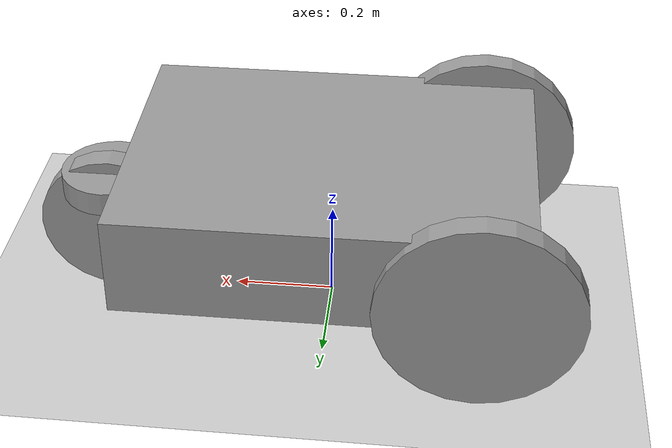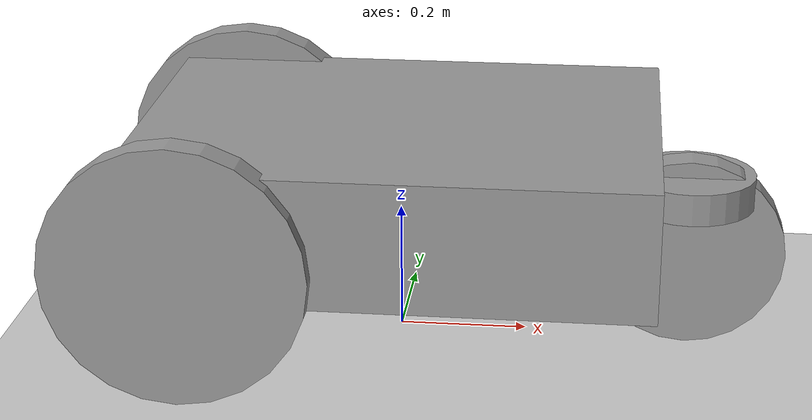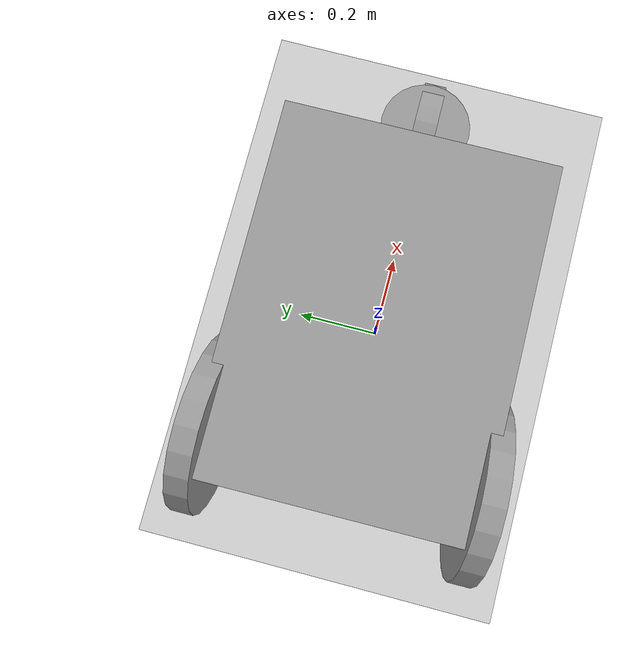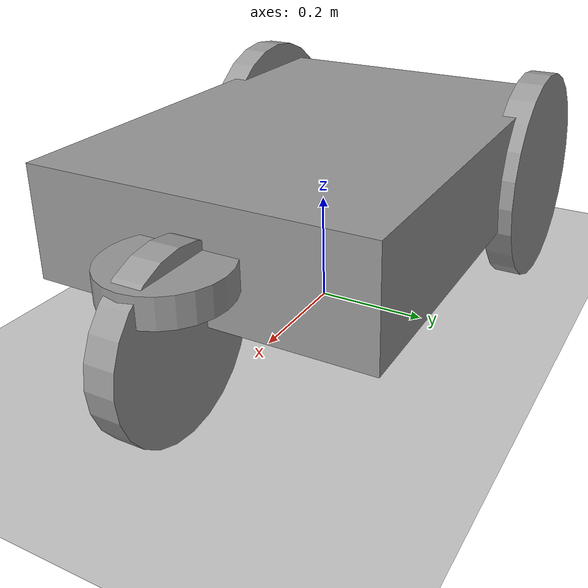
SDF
<sdf version="1.6">
 <world name="default">
  <model name="ground_plane">
   <static>1</static>
   <link name="link">
    <collision name="collision">
     <geometry><plane><normal>0 0 1</normal><size>100 100</size></plane></geometry>
     <surface><friction><ode><mu>100</mu><mu2>50</mu2></ode></friction></surface>
    </collision>
    <visual name="visual">
     <cast_shadows>0</cast_shadows>
     <geometry><plane><normal>0 0 1</normal><size>100 100</size></plane></geometry>
     <material>
      <script><uri>file://media/materials/scripts/gazebo.material</uri><name>Gazebo/Grey</name></script>
     </material>
    </visual>
   </link>
  </model>
  <model name="mycart">
   <link name="link_1">
    <pose>-0.06 0 0.04 0 -0 0</pose>
    <inertial>
     <mass>1</mass>
     <inertia>
      <ixx>0.166667</ixx>
      <ixy>0</ixy>
      <ixz>0</ixz>
      <iyy>0.166667</iyy>
      <iyz>0</iyz>
      <izz>0.166667</izz>
     </inertia>
    </inertial>
    <visual name="visual">
     <geometry><box><size>0.8 0.6 0.2</size></box></geometry>
     <material>
      <lighting>1</lighting>
      <script><uri>file://media/materials/scripts/gazebo.material</uri><name>Gazebo/Grey</name></script>
      <shader type="pixel"><normal_map>__default__</normal_map></shader>
      <ambient>0.3 0.3 0.3 1</ambient>
      <diffuse>0.7 0.7 0.7 1</diffuse>
      <specular>0.01 0.01 0.01 1</specular>
      <emissive>0 0 0 1</emissive>
     </material>
    </visual>
    <collision name="collision">
     <geometry><box><size>0.8 0.6 0.2</size></box></geometry>
     <surface>
      <friction>
       <ode><mu>1</mu><mu2>1</mu2><fdir1>0 0 0</fdir1><slip1>0</slip1><slip2>0</slip2></ode>
       <torsional>
        <coefficient>1</coefficient>
        <patch_radius>0</patch_radius>
        <surface_radius>0</surface_radius>
        <use_patch_radius>1</use_patch_radius>
        <ode><slip>0</slip></ode>
       </torsional>
      </friction>
      <bounce><restitution_coefficient>0</restitution_coefficient><threshold>1e+06</threshold></bounce>
      <contact>
       <collide_without_contact>0</collide_without_contact>
       <collide_without_contact_bitmask>1</collide_without_contact_bitmask>
       <collide_bitmask>1</collide_bitmask>
       <ode>
        <soft_cfm>0</soft_cfm>
        <soft_erp>0.2</soft_erp>
        <kp>1e+13</kp>
        <kd>1</kd>
        <max_vel>0.01</max_vel>
        <min_depth>0</min_depth>
       </ode>
       <bullet>
        <split_impulse>1</split_impulse>
        <split_impulse_penetration_threshold>-0.01</split_impulse_penetration_threshold>
        <soft_cfm>0</soft_cfm>
        <soft_erp>0.2</soft_erp>
        <kp>1e+13</kp>
        <kd>1</kd>
       </bullet>
      </contact>
     </surface>
    </collision>
   </link>
   <link name="link_2">
    <pose>-0.36 0.3 -0.01 1.5707 -0 0</pose>
    <inertial>
     <mass>1</mass>
     <inertia><ixx>0.145833</ixx><ixy>0</ixy><ixz>0</ixz><iyy>0.145833</iyy><iyz>0</iyz><izz>0.125</izz></inertia>
    </inertial>
    <visual name="visual">
     <geometry><cylinder><radius>0.2</radius><length>0.05</length></cylinder></geometry>
     <material>
      <lighting>1</lighting>
      <script><uri>file://media/materials/scripts/gazebo.material</uri><name>Gazebo/Grey</name></script>
      <shader type="pixel"><normal_map>__default__</normal_map></shader>
      <ambient>0.3 0.3 0.3 1</ambient>
      <diffuse>0.7 0.7 0.7 1</diffuse>
      <specular>0.01 0.01 0.01 1</specular>
      <emissive>0 0 0 1</emissive>
     </material>
    </visual>
    <collision name="collision">
     <geometry><cylinder><radius>0.2</radius><length>0.05</length></cylinder></geometry>
     <surface>
      <friction>
       <ode><mu>1</mu><mu2>1</mu2><fdir1>0 0 0</fdir1><slip1>0</slip1><slip2>0</slip2></ode>
       <torsional>
        <coefficient>1</coefficient>
        <patch_radius>0</patch_radius>
        <surface_radius>0</surface_radius>
        <use_patch_radius>1</use_patch_radius>
        <ode><slip>0</slip></ode>
       </torsional>
      </friction>
      <bounce><restitution_coefficient>0</restitution_coefficient><threshold>1e+06</threshold></bounce>
      <contact>
       <collide_without_contact>0</collide_without_contact>
       <collide_without_contact_bitmask>1</collide_without_contact_bitmask>
       <collide_bitmask>1</collide_bitmask>
       <ode>
        <soft_cfm>0</soft_cfm>
        <soft_erp>0.2</soft_erp>
        <kp>1e+13</kp>
        <kd>1</kd>
        <max_vel>0.01</max_vel>
        <min_depth>0</min_depth>
       </ode>
       <bullet>
        <split_impulse>1</split_impulse>
        <split_impulse_penetration_threshold>-0.01</split_impulse_penetration_threshold>
        <soft_cfm>0</soft_cfm>
        <soft_erp>0.2</soft_erp>
        <kp>1e+13</kp>
        <kd>1</kd>
       </bullet>
      </contact>
     </surface>
    </collision>
   </link>
   <link name="link_2_clone">
    <pose>-0.36 -0.3 -0.01 1.5707 -0 0</pose>
    <inertial>
     <mass>1</mass>
     <inertia><ixx>0.145833</ixx><ixy>0</ixy><ixz>0</ixz><iyy>0.145833</iyy><iyz>0</iyz><izz>0.125</izz></inertia>
    </inertial>
    <visual name="visual">
     <geometry><cylinder><radius>0.2</radius><length>0.05</length></cylinder></geometry>
     <material>
      <lighting>1</lighting>
      <script><uri>file://media/materials/scripts/gazebo.material</uri><name>Gazebo/Grey</name></script>
      <shader type="pixel"><normal_map>__default__</normal_map></shader>
      <ambient>0.3 0.3 0.3 1</ambient>
      <diffuse>0.7 0.7 0.7 1</diffuse>
      <specular>0.01 0.01 0.01 1</specular>
      <emissive>0 0 0 1</emissive>
     </material>
    </visual>
    <collision name="collision">
     <geometry><cylinder><radius>0.2</radius><length>0.05</length></cylinder></geometry>
     <surface>
      <friction>
       <ode><mu>1</mu><mu2>1</mu2><fdir1>0 0 0</fdir1><slip1>0</slip1><slip2>0</slip2></ode>
       <torsional>
        <coefficient>1</coefficient>
        <patch_radius>0</patch_radius>
        <surface_radius>0</surface_radius>
        <use_patch_radius>1</use_patch_radius>
        <ode><slip>0</slip></ode>
       </torsional>
      </friction>
      <bounce><restitution_coefficient>0</restitution_coefficient><threshold>1e+06</threshold></bounce>
      <contact>
       <collide_without_contact>0</collide_without_contact>
       <collide_without_contact_bitmask>1</collide_without_contact_bitmask>
       <collide_bitmask>1</collide_bitmask>
       <ode>
        <soft_cfm>0</soft_cfm>
        <soft_erp>0.2</soft_erp>
        <kp>1e+13</kp>
        <kd>1</kd>
        <max_vel>0.01</max_vel>
        <min_depth>0</min_depth>
       </ode>
       <bullet>
        <split_impulse>1</split_impulse>
        <split_impulse_penetration_threshold>-0.01</split_impulse_penetration_threshold>
        <soft_cfm>0</soft_cfm>
        <soft_erp>0.2</soft_erp>
        <kp>1e+13</kp>
        <kd>1</kd>
       </bullet>
      </contact>
     </surface>
    </collision>
   </link>
   <link name="link_3">
    <pose>0.39 0 0.04 0 -0 0</pose>
    <inertial>
     <mass>1</mass>
     <inertia><ixx>0.145833</ixx><ixy>0</ixy><ixz>0</ixz><iyy>0.145833</iyy><iyz>0</iyz><izz>0.125</izz></inertia>
    </inertial>
    <visual name="visual">
     <geometry><cylinder><radius>0.1</radius><length>0.05</length></cylinder></geometry>
     <material>
      <lighting>1</lighting>
      <script><uri>file://media/materials/scripts/gazebo.material</uri><name>Gazebo/Grey</name></script>
      <shader type="pixel"><normal_map>__default__</normal_map></shader>
      <ambient>0.3 0.3 0.3 1</ambient>
      <diffuse>0.7 0.7 0.7 1</diffuse>
      <specular>0.01 0.01 0.01 1</specular>
      <emissive>0 0 0 1</emissive>
     </material>
    </visual>
    <collision name="collision">
     <geometry><cylinder><radius>0.1</radius><length>0.05</length></cylinder></geometry>
     <surface>
      <friction>
       <ode><mu>1</mu><mu2>1</mu2><fdir1>0 0 0</fdir1><slip1>0</slip1><slip2>0</slip2></ode>
       <torsional>
        <coefficient>1</coefficient>
        <patch_radius>0</patch_radius>
        <surface_radius>0</surface_radius>
        <use_patch_radius>1</use_patch_radius>
        <ode><slip>0</slip></ode>
       </torsional>
      </friction>
      <bounce><restitution_coefficient>0</restitution_coefficient><threshold>1e+06</threshold></bounce>
      <contact>
       <collide_without_contact>0</collide_without_contact>
       <collide_without_contact_bitmask>1</collide_without_contact_bitmask>
       <collide_bitmask>1</collide_bitmask>
       <ode>
        <soft_cfm>0</soft_cfm>
        <soft_erp>0.2</soft_erp>
        <kp>1e+13</kp>
        <kd>1</kd>
        <max_vel>0.01</max_vel>
        <min_depth>0</min_depth>
       </ode>
       <bullet>
        <split_impulse>1</split_impulse>
        <split_impulse_penetration_threshold>-0.01</split_impulse_penetration_threshold>
        <soft_cfm>0</soft_cfm>
        <soft_erp>0.2</soft_erp>
        <kp>1e+13</kp>
        <kd>1</kd>
       </bullet>
      </contact>
     </surface>
    </collision>
   </link>
   <link name="link_4">
    <pose>0.39 0 -0.06 1.5707 -0 0</pose>
    <inertial>
     <mass>1</mass>
     <inertia><ixx>0.145833</ixx><ixy>0</ixy><ixz>0</ixz><iyy>0.145833</iyy><iyz>0</iyz><izz>0.125</izz></inertia>
    </inertial>
    <visual name="visual">
     <geometry><cylinder><radius>0.15</radius><length>0.05</length></cylinder></geometry>
     <material>
      <lighting>1</lighting>
      <script><uri>file://media/materials/scripts/gazebo.material</uri><name>Gazebo/Grey</name></script>
      <shader type="pixel"><normal_map>__default__</normal_map></shader>
      <ambient>0.3 0.3 0.3 1</ambient>
      <diffuse>0.7 0.7 0.7 1</diffuse>
      <specular>0.01 0.01 0.01 1</specular>
      <emissive>0 0 0 1</emissive>
     </material>
    </visual>
    <collision name="collision">
     <geometry><cylinder><radius>0.15</radius><length>0.05</length></cylinder></geometry>
     <surface>
      <friction>
       <ode><mu>1</mu><mu2>1</mu2><fdir1>0 0 0</fdir1><slip1>0</slip1><slip2>0</slip2></ode>
       <torsional>
        <coefficient>1</coefficient>
        <patch_radius>0</patch_radius>
        <surface_radius>0</surface_radius>
        <use_patch_radius>1</use_patch_radius>
        <ode><slip>0</slip></ode>
       </torsional>
      </friction>
      <bounce><restitution_coefficient>0</restitution_coefficient><threshold>1e+06</threshold></bounce>
      <contact>
       <collide_without_contact>0</collide_without_contact>
       <collide_without_contact_bitmask>1</collide_without_contact_bitmask>
       <collide_bitmask>1</collide_bitmask>
       <ode>
        <soft_cfm>0</soft_cfm>
        <soft_erp>0.2</soft_erp>
        <kp>1e+13</kp>
        <kd>1</kd>
        <max_vel>0.01</max_vel>
        <min_depth>0</min_depth>
       </ode>
       <bullet>
        <split_impulse>1</split_impulse>
        <split_impulse_penetration_threshold>-0.01</split_impulse_penetration_threshold>
        <soft_cfm>0</soft_cfm>
        <soft_erp>0.2</soft_erp>
        <kp>1e+13</kp>
        <kd>1</kd>
       </bullet>
      </contact>
     </surface>
    </collision>
   </link>
   <joint name="link_1_JOINT_1" type="revolute">
    <parent>link_1</parent>
    <child>link_2</child>
    <pose>0 0 0 0 -0.01 0</pose>
    <axis>
     <xyz>1 0 0</xyz>
     <limit>
      <lower>-1.79769e+308</lower>
      <upper>1.79769e+308</upper>
      <effort>-1</effort>
      <velocity>-1</velocity>
     </limit>
     <dynamics>
      <spring_reference>0</spring_reference>
      <spring_stiffness>0</spring_stiffness>
      <damping>0</damping>
     </dynamics>
    </axis>
    <physics>
     <ode><limit><cfm>0</cfm><erp>0.2</erp></limit><suspension><cfm>0</cfm><erp>0.2</erp></suspension></ode>
    </physics>
   </joint>
   <joint name="link_1_JOINT_2" type="revolute">
    <parent>link_1</parent>
    <child>link_2_clone</child>
    <axis>
     <xyz>1 0 0</xyz>
     <limit>
      <lower>-1.79769e+308</lower>
      <upper>1.79769e+308</upper>
      <effort>-1</effort>
      <velocity>-1</velocity>
     </limit>
     <dynamics>
      <spring_reference>0</spring_reference>
      <spring_stiffness>0</spring_stiffness>
      <damping>0</damping>
     </dynamics>
    </axis>
    <physics>
     <ode><limit><cfm>0</cfm><erp>0.2</erp></limit><suspension><cfm>0</cfm><erp>0.2</erp></suspension></ode>
    </physics>
   </joint>
   <joint name="link_1_JOINT_4" type="revolute">
    <parent>link_1</parent>
    <child>link_3</child>
    <axis>
     <xyz>1 0 0</xyz>
     <limit>
      <lower>-1.79769e+308</lower>
      <upper>1.79769e+308</upper>
      <effort>-1</effort>
      <velocity>-1</velocity>
     </limit>
     <dynamics>
      <spring_reference>0</spring_reference>
      <spring_stiffness>0</spring_stiffness>
      <damping>0</damping>
      <friction>0</friction>
     </dynamics>
    </axis>
    <physics>
     <ode><limit><cfm>0</cfm><erp>0.2</erp></limit><suspension><cfm>0</cfm><erp>0.2</erp></suspension></ode>
    </physics>
   </joint>
   <joint name="link_3_JOINT_7" type="revolute">
    <parent>link_3</parent>
    <child>link_4</child>
    <axis>
     <xyz>1 0 0</xyz>
     <limit>
      <lower>-1.79769e+308</lower>
      <upper>1.79769e+308</upper>
      <effort>-1</effort>
      <velocity>-1</velocity>
     </limit>
     <dynamics>
      <spring_reference>0</spring_reference>
      <spring_stiffness>0</spring_stiffness>
      <damping>0</damping>
     </dynamics>
    </axis>
    <physics>
     <ode><limit><cfm>0</cfm><erp>0.2</erp></limit><suspension><cfm>0</cfm><erp>0.2</erp></suspension></ode>
    </physics>
   </joint>
   <static>0</static>
   <pose>0.061612 0.002175 0.209642 2e-05 0.001006 0.005887</pose>
  </model>
 </world>
</sdf>
